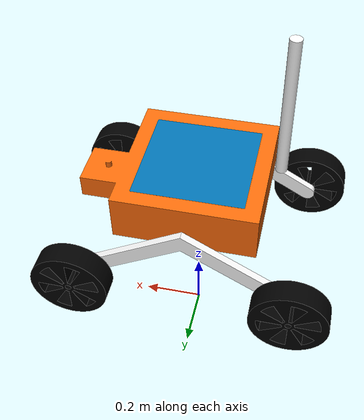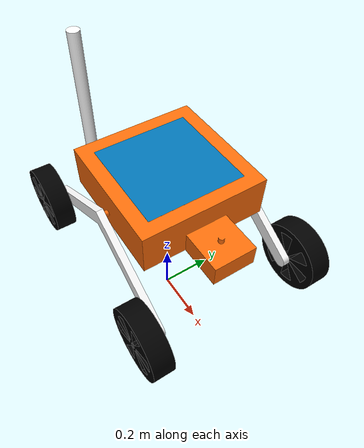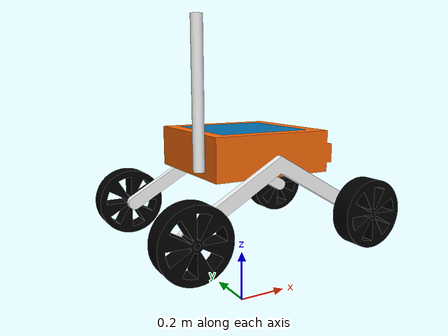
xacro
<?xml version="1.0"?>
<robot xmlns:xacro="http://www.ros.org/wiki/xacro">

    <material name="orange">
        <color rgba="${255/255} ${108/255} ${10/255} 1"/>
    </material>

    <material name="black">
        <color rgba="0 0 0 1"/>
    </material>

    <material name="white">
        <color rgba="1 1 1 1"/>
    </material>

    <link name="map"></link>
    <link name="odom"></link>

    <joint name="world_joint" type="fixed">
        <origin xyz="0.0 0.0 0.0" rpy="0.0 0.0 0.0"/>
        <parent link="map"/>
        <child link="odom"/>
    </joint>

    <joint name="odom_joint" type="fixed">
        <origin xyz="0.0 0.0 0.27" rpy="0.0 0.0 0.0"/>
        <parent link="odom"/>
        <child link="base_footprint"/>
    </joint>

    <link name="base_footprint"></link>

    <joint name="base_joint" type="fixed">
        <origin xyz="0.0 0.0 0.27" rpy="0.0 0.0 0.0"/>
        <parent link="base_footprint"/>
        <child link="base_link"/>
    </joint>

    <link name="base_link">
      <inertial>
        <origin rpy="0 0 0" xyz="0.021963834758877466 -0.00016670469182376223 0.04894599334218868"/>
        <mass value="1.9711450441063976"/>
        <inertia ixx="0.004232" ixy="-4.2e-05" ixz="-0.000263" iyy="0.012667" iyz="2e-06" izz="0.016042"/>
      </inertial>
      <visual>
        <origin rpy="0 0 ${pi/2}" xyz="0 0 0"></origin>
        <geometry>
            <mesh filename="package://galileo_description/meshes/Chassis.stl" scale="0.001 0.001 0.001"/>
        </geometry>
        <material name="orange"/>
      </visual>
      <collision>
        <origin xyz="0.0 0.0 0.0" rpy="0.0 0.0 ${pi/2}"/>
        <geometry>
            <mesh filename="package://galileo_description/meshes/Chassis.stl" scale="0.001 0.001 0.001"/>
        </geometry>
      </collision>
    </link>

    <link name="anveshak_logo">
      <visual>
        <pose>0.125 0 0 0 0 0</pose>
            <geometry>
                <box size="0.0001 0.35 0.35"/>
            </geometry>
            <material name="logo">
	    	<texture filename="package://galileo_description/meshes/anveshak_logo/Anveshak.png"/>
            </material>
      </visual>
    </link>

      <joint name="logo_joint" type="fixed">
        <origin xyz="0.0 0.0 0.15" rpy="0.0 ${pi/2} 0.0"/>
        <parent link="base_link"/>
        <child link="anveshak_logo"/>
    </joint>

    <link name="left_bogie">
        <inertial>
            <origin rpy="0 0 0" xyz="0.021963834758877466 -0.00016670469182376223 0.04894599334218868"/>
            <mass value="1.0"/>
            <inertia ixx="0.004232" ixy="-4.2e-05" ixz="-0.000263" iyy="0.012667" iyz="2e-06" izz="0.016042"/>
        </inertial>
        <visual>
            <origin rpy="0 0 ${pi/2}" xyz="0 0 0"/>
            <geometry>
                <mesh filename="package://galileo_description/meshes/Bogie.stl" scale="0.001 0.001 0.001"/>
            </geometry>
            <material name="white"/>
        </visual>
        <collision>
            <origin rpy="0 0 ${pi/2}" xyz="0 0 0"/>
            <geometry>
                <mesh filename="package://galileo_description/meshes/Bogie.stl" scale="0.001 0.001 0.001"/>
            </geometry>
        </collision>
    </link>

    <joint name="left_bogie_chassis_joint" type="revolute">
        <parent link="base_link"/>
        <child link="left_bogie"/>
        <origin xyz="0 0.24 0.05" rpy="0 0 0"/>
        <axis xyz="0 1 0"/>
        <limit effort="30" velocity="1.0" lower="-0.0" upper="0.15" />
    </joint>

    <link name="right_bogie">
        <inertial>
            <origin rpy="0 0 0" xyz="0.021963834758877466 -0.00016670469182376223 0.04894599334218868"/>
            <mass value="1.0"/>
            <inertia ixx="0.004232" ixy="-4.2e-05" ixz="-0.000263" iyy="0.012667" iyz="2e-06" izz="0.016042"/>
        </inertial>
        <visual>
            <origin rpy="0 0 -${pi/2}" xyz="0 0 0"/>
            <geometry>
                <mesh filename="package://galileo_description/meshes/Bogie.stl" scale="0.001 0.001 0.001"/>
            </geometry>
            <material name="white"/>
        </visual>
        <collision>
            <origin rpy="0 0 -${pi/2}" xyz="0 0 0"/>
            <geometry>
                <mesh filename="package://galileo_description/meshes/Bogie.stl" scale="0.001 0.001 0.001"/>
            </geometry>
        </collision>
    </link>

    <joint name="right_bogie_chassis_joint" type="revolute">
        <parent link="base_link"/>
        <child link="right_bogie"/>
        <origin xyz="0 -0.24 0.05" rpy="0 0 0"/>
        <axis xyz="0 1 0"/>
        <limit effort="30" velocity="1.0" lower="-0.0" upper="0.15" />
    </joint>

    <link name="left_front_wheel">
        <inertial>
            <origin rpy="0 0 0" xyz="1.3877787807814457e-17 0.007499999999999993 6.938893903907228e-18"/>
            <mass value="0.10956304379394399"/>
            <inertia ixx="7.1e-05" ixy="0.0" ixz="0.0" iyy="0.000137" iyz="0.0" izz="7.1e-05"/>
        </inertial>
        <visual>
            <origin xyz="0.0 0.0 0.0" rpy="0.0 0.0 ${pi/2}"/>
            <geometry>
                <mesh filename="package://galileo_description/meshes/Wheel.stl" scale="0.001 0.001 0.001"/>
            </geometry>
            <material name="black"/>
        </visual>
        <collision>
            <origin xyz="0.0 0.0 0.0" rpy="0.0 0.0 ${pi/2}"/>
            <geometry>
                <mesh filename="package://galileo_description/meshes/Wheel.stl" scale="0.001 0.001 0.001"/>
            </geometry>
        </collision>
    </link>

    <joint name="left_front_wheel_joint" type="continuous">
        <parent link="left_bogie"/>
        <child link="left_front_wheel"/>
        <origin rpy="0.0 0.0 0.0" xyz="0.35 0.03 -0.2"/>
        <axis xyz="0 1 0"/>
    </joint>

    <link name="left_rear_wheel">
        <inertial>
            <origin rpy="0 0 0" xyz="1.3877787807814457e-17 0.007499999999999993 6.938893903907228e-18"/>
            <mass value="0.10956304379394399"/>
            <inertia ixx="7.1e-05" ixy="0.0" ixz="0.0" iyy="0.000137" iyz="0.0" izz="7.1e-05"/>
        </inertial>
        <visual>
            <origin xyz="0.0 0.0 0.0" rpy="0.0 0.0 ${pi/2}"/>
            <geometry>
                <mesh filename="package://galileo_description/meshes/Wheel.stl" scale="0.001 0.001 0.001"/>
            </geometry>
            <material name="black"/>
        </visual>
        <collision>
            <origin xyz="0.0 0.0 0.0" rpy="0.0 0.0 ${pi/2}"/>
            <geometry>
                <mesh filename="package://galileo_description/meshes/Wheel.stl" scale="0.001 0.001 0.001"/>
            </geometry>
        </collision>
    </link>

    <joint name="left_rear_wheel_joint" type="continuous">
        <parent link="left_bogie"/>
        <child link="left_rear_wheel"/>
        <origin rpy="0.0 0.0 0.0" xyz="-0.35 0.03 -0.2"/>
        <axis xyz="0 1 0"/>
    </joint>

    <link name="right_front_wheel">
        <inertial>
            <origin rpy="0 0 0" xyz="1.3877787807814457e-17 0.007499999999999993 6.938893903907228e-18"/>
            <mass value="0.10956304379394399"/>
            <inertia ixx="7.1e-05" ixy="0.0" ixz="0.0" iyy="0.000137" iyz="0.0" izz="7.1e-05"/>
        </inertial>
        <visual>
            <origin xyz="0.0 0.0 0.0" rpy="0.0 0.0 -${pi/2}"/>
            <geometry>
                <mesh filename="package://galileo_description/meshes/Wheel.stl" scale="0.001 0.001 0.001"/>
            </geometry>
            <material name="black"/>
        </visual>
        <collision>
            <origin xyz="0.0 0.0 0.0" rpy="0.0 0.0 -${pi/2}"/>
            <geometry>
                <mesh filename="package://galileo_description/meshes/Wheel.stl" scale="0.001 0.001 0.001"/>
            </geometry>
        </collision>
    </link>

    <joint name="right_front_wheel_joint" type="continuous">
        <parent link="right_bogie"/>
        <child link="right_front_wheel"/>
        <origin rpy="0.0 0.0 0.0" xyz="0.35 -0.03 -0.2"/>
        <axis xyz="0 1 0"/>
    </joint>

    <link name="right_rear_wheel">
        <inertial>
            <origin rpy="0 0 0" xyz="1.3877787807814457e-17 0.007499999999999993 6.938893903907228e-18"/>
            <mass value="0.10956304379394399"/>
            <inertia ixx="7.1e-05" ixy="0.0" ixz="0.0" iyy="0.000137" iyz="0.0" izz="7.1e-05"/>
        </inertial>
        <visual>
            <origin xyz="0.0 0.0 0.0" rpy="0.0 0.0 -${pi/2}"/>
            <geometry>
                <mesh filename="package://galileo_description/meshes/Wheel.stl" scale="0.001 0.001 0.001"/>
            </geometry>
            <material name="black"/>
        </visual>
        <collision>
            <origin xyz="0.0 0.0 0.0" rpy="0.0 0.0 -${pi/2}"/>
            <geometry>
                <mesh filename="package://galileo_description/meshes/Wheel.stl" scale="0.001 0.001 0.001"/>
            </geometry>
        </collision>
    </link>

    <joint name="right_rear_wheel_joint" type="continuous">
        <parent link="right_bogie"/>
        <child link="right_rear_wheel"/>
        <origin rpy="0.0 0.0 0.0" xyz="-0.35 -0.03 -0.2"/>
        <axis xyz="0 1 0"/>
    </joint>

    <link name="antenna">
        <inertial>
            <origin rpy="0 0 0" xyz="0.021963834758877466 -0.00016670469182376223 0.04894599334218868"/>
            <mass value="0.2"/>
            <inertia ixx="0.004232" ixy="-4.2e-05" ixz="-0.000263" iyy="0.012667" iyz="2e-06" izz="0.016042"/>
        </inertial>
        <visual>
            <origin xyz="0.0 0.0 0.0" rpy="0.0 0.0 0.0"/>
            <geometry>
                <cylinder radius="0.02" length="0.5"/>
            </geometry>
            <material name="white"/>
        </visual>
        <collision>
            <origin xyz="0.0 0.0 0.0" rpy="0.0 0.0 0.0"/>
            <geometry>
                <cylinder radius="0.02" length="0.5"/>
            </geometry>
        </collision>
    </link>

    <joint name="antenna_joint" type="fixed">
        <origin xyz="-0.25 -0.15 0.28" rpy="0.0 0.0 0.0"/>
        <parent link="base_link"/>
        <child link="antenna"/>
    </joint>

</robot>
